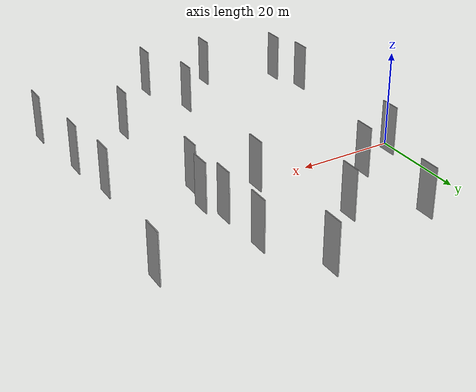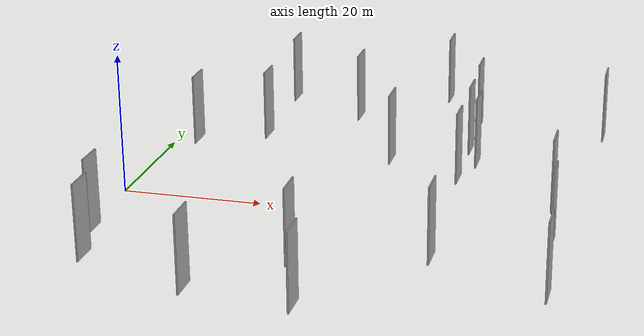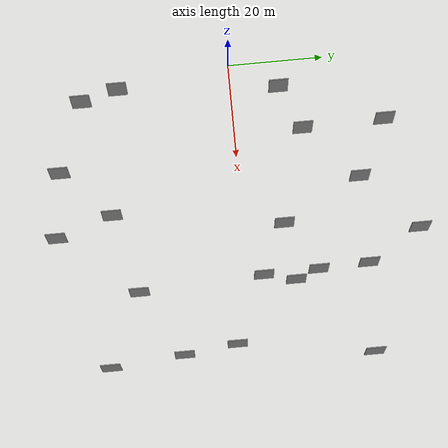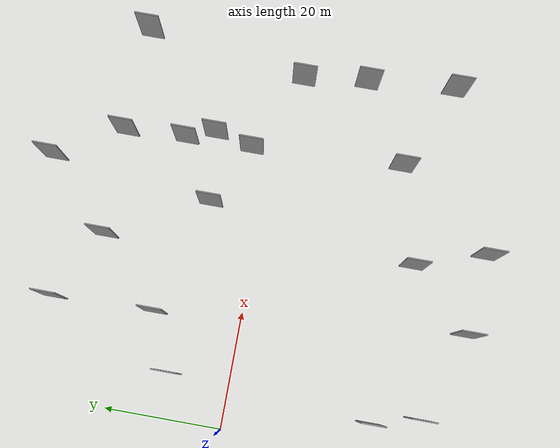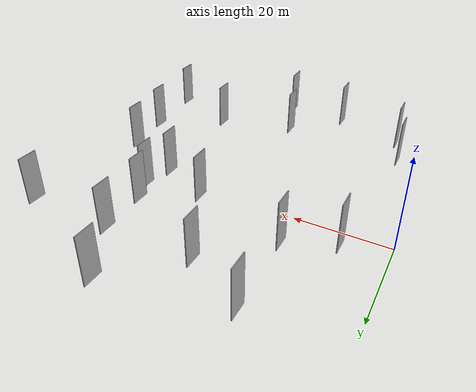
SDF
<sdf version="1.6">
 <world name="default">
  <scene>
   <sky><clouds><speed>12</speed></clouds></sky>
   <ambient>0.4 0.4 0.4 1</ambient>
   <background>0.7 0.7 0.7 1</background>
   <shadows>1</shadows>
  </scene>
  <gravity>0 0 -9.8066</gravity>
  <magnetic_field>6e-06 2.3e-05 -4.2e-05</magnetic_field>
  <physics default="0" name="default_physics" type="ode">
   <ode>
    <solver>
     <type>quick</type>
     <iters>10</iters>
     <sor>1.0</sor>
     <use_dynamic_moi_rescaling>0</use_dynamic_moi_rescaling>
    </solver>
    <constraints>
     <cfm>0</cfm>
     <erp>0.2</erp>
     <contact_max_correcting_vel>100</contact_max_correcting_vel>
     <contact_surface_layer>0.001</contact_surface_layer>
    </constraints>
   </ode>
   <max_step_size>0.004</max_step_size>
   <real_time_factor>1</real_time_factor>
   <real_time_update_rate>250</real_time_update_rate>
  </physics>
  <light name="sun" type="directional">
   <pose>0 0 10 0 0 0</pose>
   <diffuse>0.8 0.8 0.8 1</diffuse>
   <specular>0.2 0.2 0.2 1</specular>
   <attenuation>
    <range>1000</range>
    <constant>0.9</constant>
    <linear>0.01</linear>
    <quadratic>0.001</quadratic>
   </attenuation>
   <direction>-0.5 0.1 -0.9</direction>
  </light>
  <model name="grey_wall_1">
   <static>1</static>
   <pose>40.0768 35.9494 5.0 0.000000 0.000000 1.570796</pose>
   <link name="link">
    <pose>0 0 5.00 0 0 0</pose>
    <collision name="collision"><geometry><box><size>4.00 0.2 10.00</size></box></geometry></collision>
    <visual name="visual">
     <cast_shadows>0</cast_shadows>
     <geometry><box><size>4.00 0.2 10.00</size></box></geometry>
     <material>
      <script>
       <uri>model://grey_wall/materials/scripts</uri>
       <uri>model://grey_wall/materials/textures</uri>
       <name>vrc/grey_wall</name>
      </script>
     </material>
    </visual>
   </link>
  </model>
  <model name="grey_wall_2">
   <static>1</static>
   <pose>48.5085 -22.4260 5.0 0.000000 0.000000 1.570796</pose>
   <link name="link">
    <pose>0 0 5.00 0 0 0</pose>
    <collision name="collision"><geometry><box><size>4.00 0.2 10.00</size></box></geometry></collision>
    <visual name="visual">
     <cast_shadows>0</cast_shadows>
     <geometry><box><size>4.00 0.2 10.00</size></box></geometry>
     <material>
      <script>
       <uri>model://grey_wall/materials/scripts</uri>
       <uri>model://grey_wall/materials/textures</uri>
       <name>vrc/grey_wall</name>
      </script>
     </material>
    </visual>
   </link>
  </model>
  <model name="grey_wall_3">
   <static>1</static>
   <pose>46.8957 14.4274 5.0 0.000000 0.000000 1.570796</pose>
   <link name="link">
    <pose>0 0 5.00 0 0 0</pose>
    <collision name="collision"><geometry><box><size>4.00 0.2 10.00</size></box></geometry></collision>
    <visual name="visual">
     <cast_shadows>0</cast_shadows>
     <geometry><box><size>4.00 0.2 10.00</size></box></geometry>
     <material>
      <script>
       <uri>model://grey_wall/materials/scripts</uri>
       <uri>model://grey_wall/materials/textures</uri>
       <name>vrc/grey_wall</name>
      </script>
     </material>
    </visual>
   </link>
  </model>
  <model name="grey_wall_4">
   <static>1</static>
   <pose>7.6327 -31.3090 5.0 0.000000 0.000000 1.570796</pose>
   <link name="link">
    <pose>0 0 5.00 0 0 0</pose>
    <collision name="collision"><geometry><box><size>4.00 0.2 10.00</size></box></geometry></collision>
    <visual name="visual">
     <cast_shadows>0</cast_shadows>
     <geometry><box><size>4.00 0.2 10.00</size></box></geometry>
     <material>
      <script>
       <uri>model://grey_wall/materials/scripts</uri>
       <uri>model://grey_wall/materials/textures</uri>
       <name>vrc/grey_wall</name>
      </script>
     </material>
    </visual>
   </link>
  </model>
  <model name="grey_wall_5">
   <static>1</static>
   <pose>36.7635 8.3329 5.0 0.000000 0.000000 1.570796</pose>
   <link name="link">
    <pose>0 0 5.00 0 0 0</pose>
    <collision name="collision"><geometry><box><size>4.00 0.2 10.00</size></box></geometry></collision>
    <visual name="visual">
     <cast_shadows>0</cast_shadows>
     <geometry><box><size>4.00 0.2 10.00</size></box></geometry>
     <material>
      <script>
       <uri>model://grey_wall/materials/scripts</uri>
       <uri>model://grey_wall/materials/textures</uri>
       <name>vrc/grey_wall</name>
      </script>
     </material>
    </visual>
   </link>
  </model>
  <model name="grey_wall_6">
   <static>1</static>
   <pose>7.8619 9.7866 5.0 0.000000 0.000000 1.570796</pose>
   <link name="link">
    <pose>0 0 5.00 0 0 0</pose>
    <collision name="collision"><geometry><box><size>4.00 0.2 10.00</size></box></geometry></collision>
    <visual name="visual">
     <cast_shadows>0</cast_shadows>
     <geometry><box><size>4.00 0.2 10.00</size></box></geometry>
     <material>
      <script>
       <uri>model://grey_wall/materials/scripts</uri>
       <uri>model://grey_wall/materials/textures</uri>
       <name>vrc/grey_wall</name>
      </script>
     </material>
    </visual>
   </link>
  </model>
  <model name="grey_wall_7">
   <static>1</static>
   <pose>22.3459 -36.8904 5.0 0.000000 0.000000 1.570796</pose>
   <link name="link">
    <pose>0 0 5.00 0 0 0</pose>
    <collision name="collision"><geometry><box><size>4.00 0.2 10.00</size></box></geometry></collision>
    <visual name="visual">
     <cast_shadows>0</cast_shadows>
     <geometry><box><size>4.00 0.2 10.00</size></box></geometry>
     <material>
      <script>
       <uri>model://grey_wall/materials/scripts</uri>
       <uri>model://grey_wall/materials/textures</uri>
       <name>vrc/grey_wall</name>
      </script>
     </material>
    </visual>
   </link>
  </model>
  <model name="grey_wall_8">
   <static>1</static>
   <pose>32.1319 -26.7567 5.0 0.000000 0.000000 1.570796</pose>
   <link name="link">
    <pose>0 0 5.00 0 0 0</pose>
    <collision name="collision"><geometry><box><size>4.00 0.2 10.00</size></box></geometry></collision>
    <visual name="visual">
     <cast_shadows>0</cast_shadows>
     <geometry><box><size>4.00 0.2 10.00</size></box></geometry>
     <material>
      <script>
       <uri>model://grey_wall/materials/scripts</uri>
       <uri>model://grey_wall/materials/textures</uri>
       <name>vrc/grey_wall</name>
      </script>
     </material>
    </visual>
   </link>
  </model>
  <model name="grey_wall_9">
   <static>1</static>
   <pose>17.1582 13.9943 5.0 0.000000 0.000000 1.570796</pose>
   <link name="link">
    <pose>0 0 5.00 0 0 0</pose>
    <collision name="collision"><geometry><box><size>4.00 0.2 10.00</size></box></geometry></collision>
    <visual name="visual">
     <cast_shadows>0</cast_shadows>
     <geometry><box><size>4.00 0.2 10.00</size></box></geometry>
     <material>
      <script>
       <uri>model://grey_wall/materials/scripts</uri>
       <uri>model://grey_wall/materials/textures</uri>
       <name>vrc/grey_wall</name>
      </script>
     </material>
    </visual>
   </link>
  </model>
  <model name="grey_wall_10">
   <static>1</static>
   <pose>47.1271 3.1942 5.0 0.000000 0.000000 1.570796</pose>
   <link name="link">
    <pose>0 0 5.00 0 0 0</pose>
    <collision name="collision"><geometry><box><size>4.00 0.2 10.00</size></box></geometry></collision>
    <visual name="visual">
     <cast_shadows>0</cast_shadows>
     <geometry><box><size>4.00 0.2 10.00</size></box></geometry>
     <material>
      <script>
       <uri>model://grey_wall/materials/scripts</uri>
       <uri>model://grey_wall/materials/textures</uri>
       <name>vrc/grey_wall</name>
      </script>
     </material>
    </visual>
   </link>
  </model>
  <model name="grey_wall_11">
   <static>1</static>
   <pose>35.9084 -38.4256 5.0 0.000000 0.000000 1.570796</pose>
   <link name="link">
    <pose>0 0 5.00 0 0 0</pose>
    <collision name="collision"><geometry><box><size>4.00 0.2 10.00</size></box></geometry></collision>
    <visual name="visual">
     <cast_shadows>0</cast_shadows>
     <geometry><box><size>4.00 0.2 10.00</size></box></geometry>
     <material>
      <script>
       <uri>model://grey_wall/materials/scripts</uri>
       <uri>model://grey_wall/materials/textures</uri>
       <name>vrc/grey_wall</name>
      </script>
     </material>
    </visual>
   </link>
  </model>
  <model name="grey_wall_12">
   <static>1</static>
   <pose>62.0846 -14.2858 5.0 0.000000 0.000000 1.570796</pose>
   <link name="link">
    <pose>0 0 5.00 0 0 0</pose>
    <collision name="collision"><geometry><box><size>4.00 0.2 10.00</size></box></geometry></collision>
    <visual name="visual">
     <cast_shadows>0</cast_shadows>
     <geometry><box><size>4.00 0.2 10.00</size></box></geometry>
     <material>
      <script>
       <uri>model://grey_wall/materials/scripts</uri>
       <uri>model://grey_wall/materials/textures</uri>
       <name>vrc/grey_wall</name>
      </script>
     </material>
    </visual>
   </link>
  </model>
  <model name="grey_wall_13">
   <static>1</static>
   <pose>46.4742 24.7945 5.0 0.000000 0.000000 1.570796</pose>
   <link name="link">
    <pose>0 0 5.00 0 0 0</pose>
    <collision name="collision"><geometry><box><size>4.00 0.2 10.00</size></box></geometry></collision>
    <visual name="visual">
     <cast_shadows>0</cast_shadows>
     <geometry><box><size>4.00 0.2 10.00</size></box></geometry>
     <material>
      <script>
       <uri>model://grey_wall/materials/scripts</uri>
       <uri>model://grey_wall/materials/textures</uri>
       <name>vrc/grey_wall</name>
      </script>
     </material>
    </visual>
   </link>
  </model>
  <model name="grey_wall_14">
   <static>1</static>
   <pose>64.7400 24.1375 5.0 0.000000 0.000000 1.570796</pose>
   <link name="link">
    <pose>0 0 5.00 0 0 0</pose>
    <collision name="collision"><geometry><box><size>4.00 0.2 10.00</size></box></geometry></collision>
    <visual name="visual">
     <cast_shadows>0</cast_shadows>
     <geometry><box><size>4.00 0.2 10.00</size></box></geometry>
     <material>
      <script>
       <uri>model://grey_wall/materials/scripts</uri>
       <uri>model://grey_wall/materials/textures</uri>
       <name>vrc/grey_wall</name>
      </script>
     </material>
    </visual>
   </link>
  </model>
  <model name="grey_wall_15">
   <static>1</static>
   <pose>28.3373 24.7083 5.0 0.000000 0.000000 1.570796</pose>
   <link name="link">
    <pose>0 0 5.00 0 0 0</pose>
    <collision name="collision"><geometry><box><size>4.00 0.2 10.00</size></box></geometry></collision>
    <visual name="visual">
     <cast_shadows>0</cast_shadows>
     <geometry><box><size>4.00 0.2 10.00</size></box></geometry>
     <material>
      <script>
       <uri>model://grey_wall/materials/scripts</uri>
       <uri>model://grey_wall/materials/textures</uri>
       <name>vrc/grey_wall</name>
      </script>
     </material>
    </visual>
   </link>
  </model>
  <model name="grey_wall_16">
   <static>1</static>
   <pose>5.6250 -23.6150 5.0 0.000000 0.000000 1.570796</pose>
   <link name="link">
    <pose>0 0 5.00 0 0 0</pose>
    <collision name="collision"><geometry><box><size>4.00 0.2 10.00</size></box></geometry></collision>
    <visual name="visual">
     <cast_shadows>0</cast_shadows>
     <geometry><box><size>4.00 0.2 10.00</size></box></geometry>
     <material>
      <script>
       <uri>model://grey_wall/materials/scripts</uri>
       <uri>model://grey_wall/materials/textures</uri>
       <name>vrc/grey_wall</name>
      </script>
     </material>
    </visual>
   </link>
  </model>
  <model name="grey_wall_17">
   <static>1</static>
   <pose>48.6551 9.6393 5.0 0.000000 0.000000 1.570796</pose>
   <link name="link">
    <pose>0 0 5.00 0 0 0</pose>
    <collision name="collision"><geometry><box><size>4.00 0.2 10.00</size></box></geometry></collision>
    <visual name="visual">
     <cast_shadows>0</cast_shadows>
     <geometry><box><size>4.00 0.2 10.00</size></box></geometry>
     <material>
      <script>
       <uri>model://grey_wall/materials/scripts</uri>
       <uri>model://grey_wall/materials/textures</uri>
       <name>vrc/grey_wall</name>
      </script>
     </material>
    </visual>
   </link>
  </model>
  <model name="grey_wall_18">
   <static>1</static>
   <pose>60.7862 -3.4447 5.0 0.000000 0.000000 1.570796</pose>
   <link name="link">
    <pose>0 0 5.00 0 0 0</pose>
    <collision name="collision"><geometry><box><size>4.00 0.2 10.00</size></box></geometry></collision>
    <visual name="visual">
     <cast_shadows>0</cast_shadows>
     <geometry><box><size>4.00 0.2 10.00</size></box></geometry>
     <material>
      <script>
       <uri>model://grey_wall/materials/scripts</uri>
       <uri>model://grey_wall/materials/textures</uri>
       <name>vrc/grey_wall</name>
      </script>
     </material>
    </visual>
   </link>
  </model>
  <model name="grey_wall_19">
   <static>1</static>
   <pose>63.4442 -29.3271 5.0 0.000000 0.000000 1.570796</pose>
   <link name="link">
    <pose>0 0 5.00 0 0 0</pose>
    <collision name="collision"><geometry><box><size>4.00 0.2 10.00</size></box></geometry></collision>
    <visual name="visual">
     <cast_shadows>0</cast_shadows>
     <geometry><box><size>4.00 0.2 10.00</size></box></geometry>
     <material>
      <script>
       <uri>model://grey_wall/materials/scripts</uri>
       <uri>model://grey_wall/materials/textures</uri>
       <name>vrc/grey_wall</name>
      </script>
     </material>
    </visual>
   </link>
  </model>
  <model name="grey_wall_20">
   <static>1</static>
   <pose>16.6896 30.9979 5.0 0.000000 0.000000 1.570796</pose>
   <link name="link">
    <pose>0 0 5.00 0 0 0</pose>
    <collision name="collision"><geometry><box><size>4.00 0.2 10.00</size></box></geometry></collision>
    <visual name="visual">
     <cast_shadows>0</cast_shadows>
     <geometry><box><size>4.00 0.2 10.00</size></box></geometry>
     <material>
      <script>
       <uri>model://grey_wall/materials/scripts</uri>
       <uri>model://grey_wall/materials/textures</uri>
       <name>vrc/grey_wall</name>
      </script>
     </material>
    </visual>
   </link>
  </model>
 </world>
</sdf>
